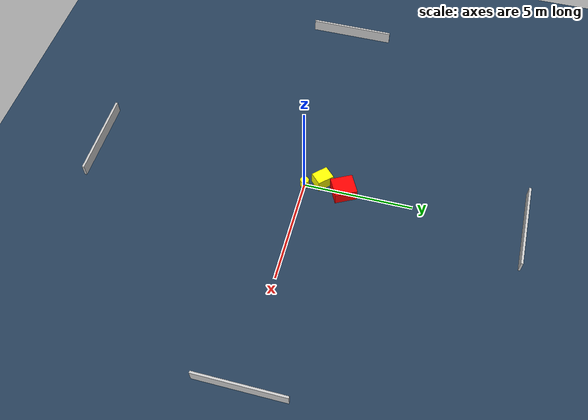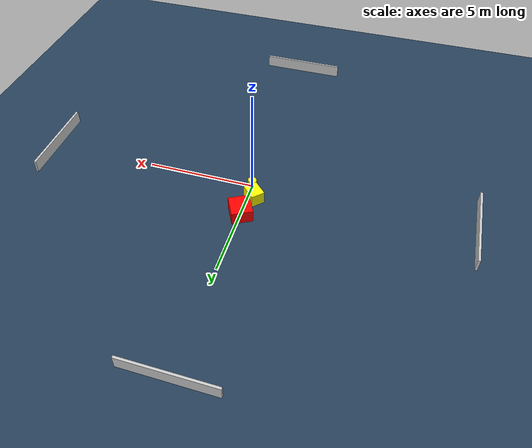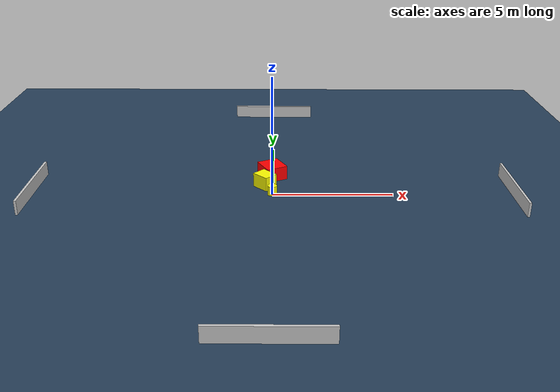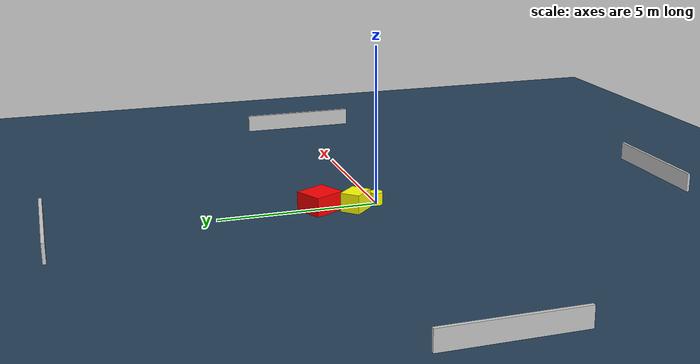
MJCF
<?xml version="1.0" ?>
<mujoco model="generated_environment">
  <option timestep="0.01" integrator="RK4" cone="elliptic"/>
  <default>
    <geom density="1"/>
  </default>
  <asset>
    <texture builtin="gradient" height="3072" name="skybox" rgb1="0.3 0.5 0.7" rgb2="0 0 0" type="skybox" width="512"/>
    <texture builtin="checker" height="300" name="groundplane" rgb1="0.2 0.3 0.4" rgb2="0.1 0.2 0.3" type="2d" width="300"/>
    <material name="groundplane" reflectance="0.2" texrepeat="5 5" texture="groundplane"/>
  </asset>
  <worldbody>
    <light dir="0 0 -1" directional="true" pos="0 0 1.5"/>
    <geom condim="3" friction="0.5 0.005 0.001" material="groundplane" name="floor" pos="0 0 0" size="0 0 0.05" type="plane"/>
    <body name="walls">
      <geom name="wall_1" condim="4" pos="-10.0 0.0 0.3" rgba="0.800000011920929 0.800000011920929 0.800000011920929 1.0" size="0.05 2.0 0.3" type="box"/>
      <geom name="wall_2" condim="4" pos="10.0 0.0 0.3" rgba="0.800000011920929 0.800000011920929 0.800000011920929 1.0" size="0.05 2.0 0.3" type="box"/>
      <geom name="wall_3" condim="4" pos="0.0 -10.0 0.3" rgba="0.800000011920929 0.800000011920929 0.800000011920929 1.0" size="2.0 0.05 0.3" type="box"/>
      <geom name="wall_4" condim="4" pos="0.0 10.0 0.3" rgba="0.800000011920929 0.800000011920929 0.800000011920929 1.0" size="2.0 0.05 0.3" type="box"/>
    </body>
    <body name="robot">
      <joint name="joint_x" type="slide" pos="0 0 0" axis="1 0 0"/>
      <joint name="joint_y" type="slide" pos="0 0 0" axis="0 1 0"/>
      <geom name="robot" type="cylinder" pos="0.0 0.0 0.2" size="0.2 0.2 0.0" mass="5.0" friction="1.0 0.005 0.0001" condim="4" rgba="1.0 1.0 0.0 1.0"/>
    </body>
    <body name="obstacle_1_movable">
      <geom name="obstacle_1_movable" condim="4" pos="-0.313714021405934 0.7712281642479931 0.3" euler="0 0 134.7663825322127" friction="0.0 0.005 0.001" rgba="1.0 1.0 0.0 1.0" size="0.38941822930043535 0.3142005157043818 0.3" type="box" mass="0.1"/>
      <joint type="free"/>
    </body>
    <body name="obstacle_2_static">
      <geom name="obstacle_2_static" condim="4" pos="-0.0167142097599521 1.825147596143473 0.3" euler="0 0 297.38059426367494" friction="0.0 0.005 0.001" rgba="1.0 0.0 0.0 1.0" size="0.5119495915616314 0.4733450485961658 0.3" type="box"/>
    </body>
  </worldbody>
  <actuator>
    <motor name="actuator_x" joint="joint_x" gear="1" ctrlrange="-1 1"/>
    <motor name="actuator_y" joint="joint_y" gear="1" ctrlrange="-1 1"/>
  </actuator>
</mujoco>
